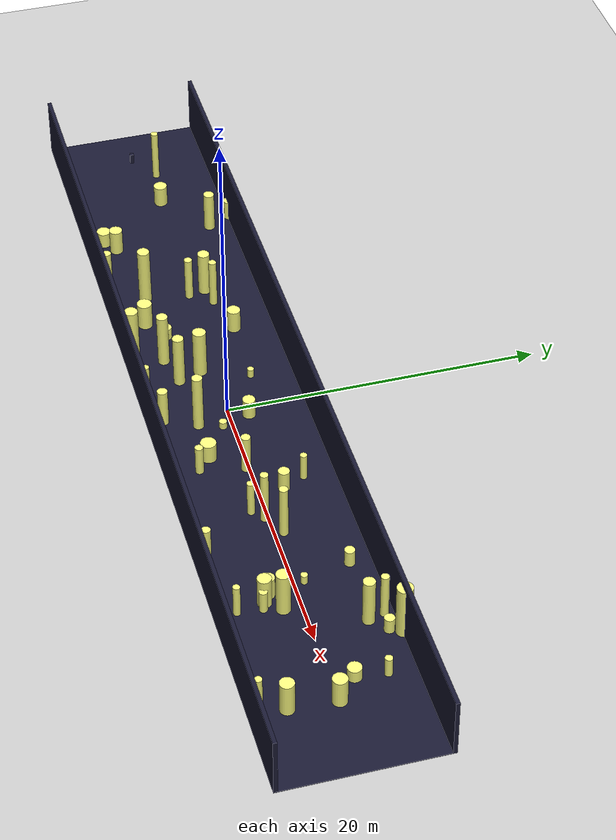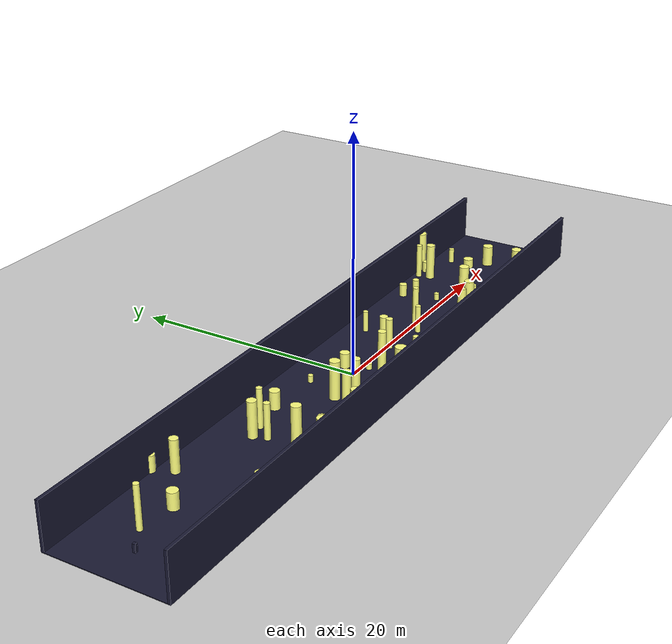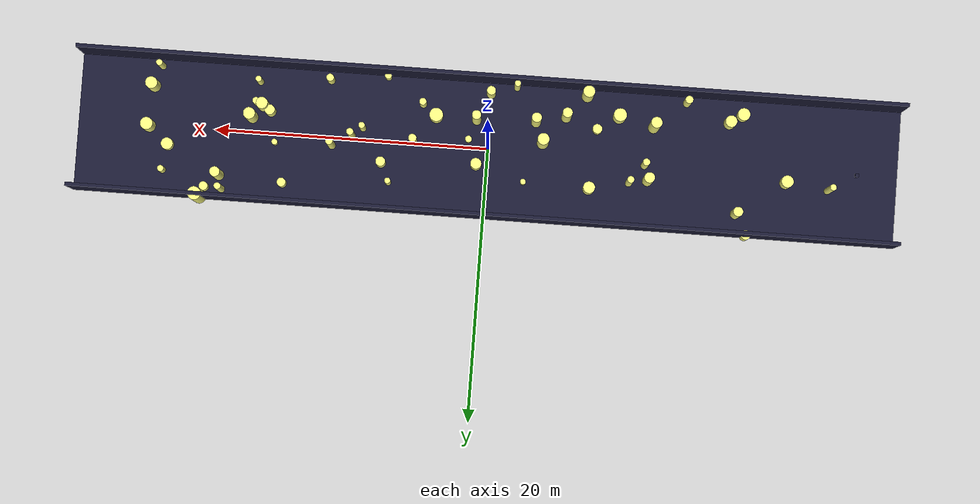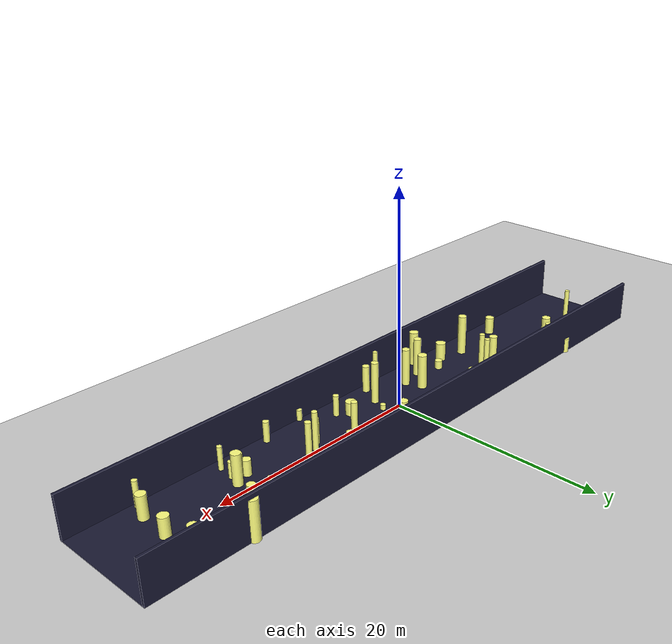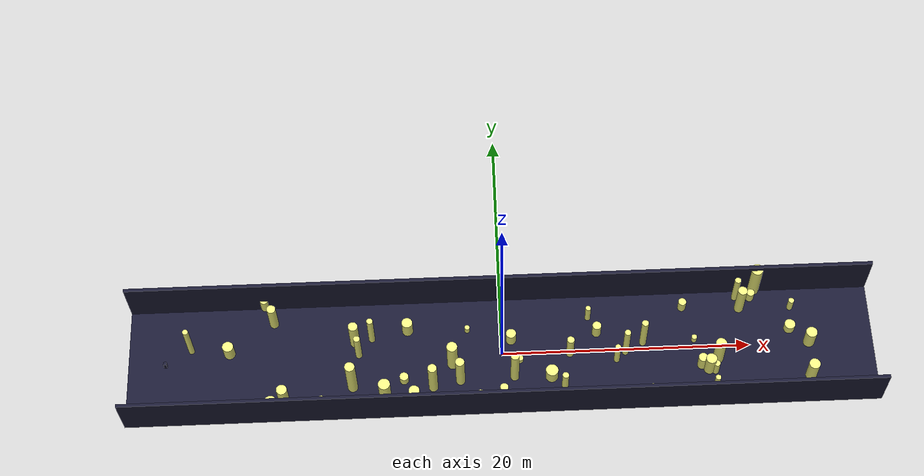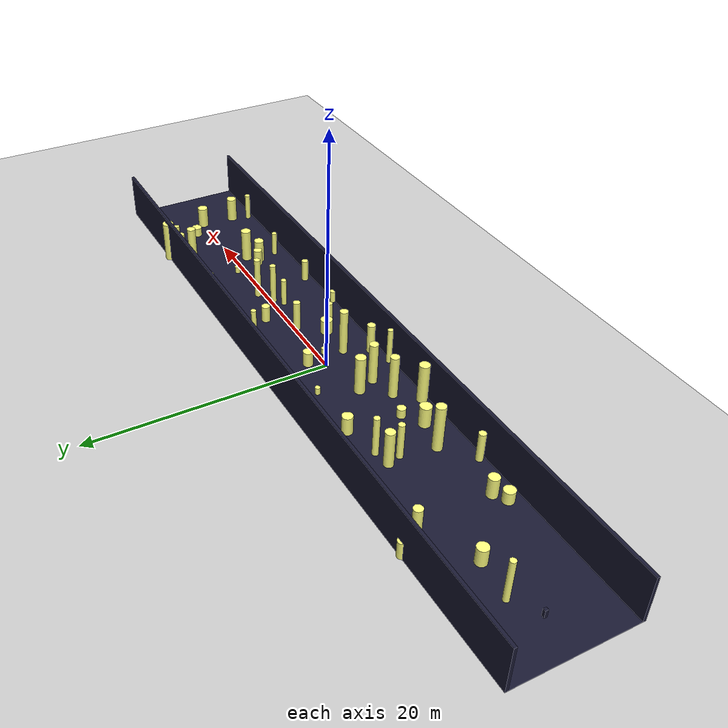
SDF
<?xml version="1.0"?>
<sdf version="1.4">
  <world name="default">
    <gui>
      <camera name="user_camera">
        <pose>-20 -30 40 0 0.66 0.83</pose>
      </camera>
    </gui>
    <include>
      <uri>model://ground_plane</uri>
    </include>
    <include>
      <uri>model://sun</uri>
    </include>
    <scene>
      <shadows>0</shadows>
    </scene>
    <model name="forest">
      <static>true</static>
      <link name="cylinder0">
        <pose>-11.50971648940295 0.3784406899637647 1.5368455626174347 0 0 0 </pose>
        <visual name="visual">
          <geometry>
            <cylinder>
              <radius>0.2601012299020969</radius>
              <length>3.0736911252348693</length>
            </cylinder>
          </geometry>
          <material>
            <ambient>0.6 0.6 0.6 1</ambient>
            <diffuse>1 1 0.5 1</diffuse>
            <specular>0 0 0</specular>
            <emissive>0 0 0 1</emissive>
          </material>
        </visual>
        <collision name="collision">
          <geometry>
            <cylinder>
              <radius>0.2601012299020969</radius>
              <length>3.0736911252348693</length>
            </cylinder>
          </geometry>
          <max_contacts>0</max_contacts>
        </collision>
      </link>
      <link name="cylinder1">
        <pose>20.445465096450185 4.229135043377296 0.5230156194948639 0 0 0 </pose>
        <visual name="visual">
          <geometry>
            <cylinder>
              <radius>0.31988989258885936</radius>
              <length>1.0460312389897277</length>
            </cylinder>
          </geometry>
          <material>
            <ambient>0.6 0.6 0.6 1</ambient>
            <diffuse>1 1 0.5 1</diffuse>
            <specular>0 0 0</specular>
            <emissive>0 0 0 1</emissive>
          </material>
        </visual>
        <collision name="collision">
          <geometry>
            <cylinder>
              <radius>0.31988989258885936</radius>
              <length>1.0460312389897277</length>
            </cylinder>
          </geometry>
          <max_contacts>0</max_contacts>
        </collision>
      </link>
      <link name="cylinder2">
        <pose>-19.12417257735759 4.9927685493324745 0.7102058162692204 0 0 0 </pose>
        <visual name="visual">
          <geometry>
            <cylinder>
              <radius>0.3498815470747685</radius>
              <length>1.4204116325384408</length>
            </cylinder>
          </geometry>
          <material>
            <ambient>0.6 0.6 0.6 1</ambient>
            <diffuse>1 1 0.5 1</diffuse>
            <specular>0 0 0</specular>
            <emissive>0 0 0 1</emissive>
          </material>
        </visual>
        <collision name="collision">
          <geometry>
            <cylinder>
              <radius>0.3498815470747685</radius>
              <length>1.4204116325384408</length>
            </cylinder>
          </geometry>
          <max_contacts>0</max_contacts>
        </collision>
      </link>
      <link name="cylinder3">
        <pose>24.13416651990684 -4.365896746050368 1.2246563809555269 0 0 0 </pose>
        <visual name="visual">
          <geometry>
            <cylinder>
              <radius>0.23080939881732151</radius>
              <length>2.4493127619110537</length>
            </cylinder>
          </geometry>
          <material>
            <ambient>0.6 0.6 0.6 1</ambient>
            <diffuse>1 1 0.5 1</diffuse>
            <specular>0 0 0</specular>
            <emissive>0 0 0 1</emissive>
          </material>
        </visual>
        <collision name="collision">
          <geometry>
            <cylinder>
              <radius>0.23080939881732151</radius>
              <length>2.4493127619110537</length>
            </cylinder>
          </geometry>
          <max_contacts>0</max_contacts>
        </collision>
      </link>
      <link name="cylinder4">
        <pose>-10.45249539578591 1.7419244824406146 1.6975572415122342 0 0 0 </pose>
        <visual name="visual">
          <geometry>
            <cylinder>
              <radius>0.25023423193561384</radius>
              <length>3.3951144830244684</length>
            </cylinder>
          </geometry>
          <material>
            <ambient>0.6 0.6 0.6 1</ambient>
            <diffuse>1 1 0.5 1</diffuse>
            <specular>0 0 0</specular>
            <emissive>0 0 0 1</emissive>
          </material>
        </visual>
        <collision name="collision">
          <geometry>
            <cylinder>
              <radius>0.25023423193561384</radius>
              <length>3.3951144830244684</length>
            </cylinder>
          </geometry>
          <max_contacts>0</max_contacts>
        </collision>
      </link>
      <link name="cylinder5">
        <pose>14.796656784486203 3.5631717576560913 0.5765609520463494 0 0 0 </pose>
        <visual name="visual">
          <geometry>
            <cylinder>
              <radius>0.3223586481893456</radius>
              <length>1.1531219040926988</length>
            </cylinder>
          </geometry>
          <material>
            <ambient>0.6 0.6 0.6 1</ambient>
            <diffuse>1 1 0.5 1</diffuse>
            <specular>0 0 0</specular>
            <emissive>0 0 0 1</emissive>
          </material>
        </visual>
        <collision name="collision">
          <geometry>
            <cylinder>
              <radius>0.3223586481893456</radius>
              <length>1.1531219040926988</length>
            </cylinder>
          </geometry>
          <max_contacts>0</max_contacts>
        </collision>
      </link>
      <link name="cylinder6">
        <pose>-7.027598962559832 -4.389840433668959 1.6943679283181077 0 0 0 </pose>
        <visual name="visual">
          <geometry>
            <cylinder>
              <radius>0.4260250800929599</radius>
              <length>3.3887358566362153</length>
            </cylinder>
          </geometry>
          <material>
            <ambient>0.6 0.6 0.6 1</ambient>
            <diffuse>1 1 0.5 1</diffuse>
            <specular>0 0 0</specular>
            <emissive>0 0 0 1</emissive>
          </material>
        </visual>
        <collision name="collision">
          <geometry>
            <cylinder>
              <radius>0.4260250800929599</radius>
              <length>3.3887358566362153</length>
            </cylinder>
          </geometry>
          <max_contacts>0</max_contacts>
        </collision>
      </link>
      <link name="cylinder7">
        <pose>19.453249235345602 3.306012450025925 1.6114820340505769 0 0 0 </pose>
        <visual name="visual">
          <geometry>
            <cylinder>
              <radius>0.3701882476601405</radius>
              <length>3.2229640681011538</length>
            </cylinder>
          </geometry>
          <material>
            <ambient>0.6 0.6 0.6 1</ambient>
            <diffuse>1 1 0.5 1</diffuse>
            <specular>0 0 0</specular>
            <emissive>0 0 0 1</emissive>
          </material>
        </visual>
        <collision name="collision">
          <geometry>
            <cylinder>
              <radius>0.3701882476601405</radius>
              <length>3.2229640681011538</length>
            </cylinder>
          </geometry>
          <max_contacts>0</max_contacts>
        </collision>
      </link>
      <link name="cylinder8">
        <pose>20.766220480286847 4.979602330847756 1.781969511092043 0 0 0 </pose>
        <visual name="visual">
          <geometry>
            <cylinder>
              <radius>0.4853423752478854</radius>
              <length>3.563939022184086</length>
            </cylinder>
          </geometry>
          <material>
            <ambient>0.6 0.6 0.6 1</ambient>
            <diffuse>1 1 0.5 1</diffuse>
            <specular>0 0 0</specular>
            <emissive>0 0 0 1</emissive>
          </material>
        </visual>
        <collision name="collision">
          <geometry>
            <cylinder>
              <radius>0.4853423752478854</radius>
              <length>3.563939022184086</length>
            </cylinder>
          </geometry>
          <max_contacts>0</max_contacts>
        </collision>
      </link>
      <link name="cylinder9">
        <pose>-21.905142377105136 0.8982500905047779 0.7407148571103568 0 0 0 </pose>
        <visual name="visual">
          <geometry>
            <cylinder>
              <radius>0.44558727020398137</radius>
              <length>1.4814297142207136</length>
            </cylinder>
          </geometry>
          <material>
            <ambient>0.6 0.6 0.6 1</ambient>
            <diffuse>1 1 0.5 1</diffuse>
            <specular>0 0 0</specular>
            <emissive>0 0 0 1</emissive>
          </material>
        </visual>
        <collision name="collision">
          <geometry>
            <cylinder>
              <radius>0.44558727020398137</radius>
              <length>1.4814297142207136</length>
            </cylinder>
          </geometry>
          <max_contacts>0</max_contacts>
        </collision>
      </link>
      <link name="cylinder10">
        <pose>23.60845223542055 3.2123309096910724 0.6759926315638016 0 0 0 </pose>
        <visual name="visual">
          <geometry>
            <cylinder>
              <radius>0.23364750921768068</radius>
              <length>1.3519852631276033</length>
            </cylinder>
          </geometry>
          <material>
            <ambient>0.6 0.6 0.6 1</ambient>
            <diffuse>1 1 0.5 1</diffuse>
            <specular>0 0 0</specular>
            <emissive>0 0 0 1</emissive>
          </material>
        </visual>
        <collision name="collision">
          <geometry>
            <cylinder>
              <radius>0.23364750921768068</radius>
              <length>1.3519852631276033</length>
            </cylinder>
          </geometry>
          <max_contacts>0</max_contacts>
        </collision>
      </link>
      <link name="cylinder11">
        <pose>16.89928428154692 -3.7264520253411106 1.0966298093393507 0 0 0 </pose>
        <visual name="visual">
          <geometry>
            <cylinder>
              <radius>0.21959606382685526</radius>
              <length>2.1932596186787015</length>
            </cylinder>
          </geometry>
          <material>
            <ambient>0.6 0.6 0.6 1</ambient>
            <diffuse>1 1 0.5 1</diffuse>
            <specular>0 0 0</specular>
            <emissive>0 0 0 1</emissive>
          </material>
        </visual>
        <collision name="collision">
          <geometry>
            <cylinder>
              <radius>0.21959606382685526</radius>
              <length>2.1932596186787015</length>
            </cylinder>
          </geometry>
          <max_contacts>0</max_contacts>
        </collision>
      </link>
      <link name="cylinder12">
        <pose>-7.8958292670709405 -2.003485623476171 0.4308336722723529 0 0 0 </pose>
        <visual name="visual">
          <geometry>
            <cylinder>
              <radius>0.35230183148036553</radius>
              <length>0.8616673445447058</length>
            </cylinder>
          </geometry>
          <material>
            <ambient>0.6 0.6 0.6 1</ambient>
            <diffuse>1 1 0.5 1</diffuse>
            <specular>0 0 0</specular>
            <emissive>0 0 0 1</emissive>
          </material>
        </visual>
        <collision name="collision">
          <geometry>
            <cylinder>
              <radius>0.35230183148036553</radius>
              <length>0.8616673445447058</length>
            </cylinder>
          </geometry>
          <max_contacts>0</max_contacts>
        </collision>
      </link>
      <link name="cylinder13">
        <pose>7.591017384437002 -4.766936036940973 0.5309849560073668 0 0 0 </pose>
        <visual name="visual">
          <geometry>
            <cylinder>
              <radius>0.24578454448125603</radius>
              <length>1.0619699120147337</length>
            </cylinder>
          </geometry>
          <material>
            <ambient>0.6 0.6 0.6 1</ambient>
            <diffuse>1 1 0.5 1</diffuse>
            <specular>0 0 0</specular>
            <emissive>0 0 0 1</emissive>
          </material>
        </visual>
        <collision name="collision">
          <geometry>
            <cylinder>
              <radius>0.24578454448125603</radius>
              <length>1.0619699120147337</length>
            </cylinder>
          </geometry>
          <max_contacts>0</max_contacts>
        </collision>
      </link>
      <link name="cylinder14">
        <pose>-1.8607716086681663 -4.634621952053401 1.5568460076103212 0 0 0 </pose>
        <visual name="visual">
          <geometry>
            <cylinder>
              <radius>0.2206635264676672</radius>
              <length>3.1136920152206424</length>
            </cylinder>
          </geometry>
          <material>
            <ambient>0.6 0.6 0.6 1</ambient>
            <diffuse>1 1 0.5 1</diffuse>
            <specular>0 0 0</specular>
            <emissive>0 0 0 1</emissive>
          </material>
        </visual>
        <collision name="collision">
          <geometry>
            <cylinder>
              <radius>0.2206635264676672</radius>
              <length>3.1136920152206424</length>
            </cylinder>
          </geometry>
          <max_contacts>0</max_contacts>
        </collision>
      </link>
      <link name="cylinder15">
        <pose>17.038567420000945 -2.2048668098769078 0.7668847074518159 0 0 0 </pose>
        <visual name="visual">
          <geometry>
            <cylinder>
              <radius>0.2547004432745423</radius>
              <length>1.5337694149036318</length>
            </cylinder>
          </geometry>
          <material>
            <ambient>0.6 0.6 0.6 1</ambient>
            <diffuse>1 1 0.5 1</diffuse>
            <specular>0 0 0</specular>
            <emissive>0 0 0 1</emissive>
          </material>
        </visual>
        <collision name="collision">
          <geometry>
            <cylinder>
              <radius>0.2547004432745423</radius>
              <length>1.5337694149036318</length>
            </cylinder>
          </geometry>
          <max_contacts>0</max_contacts>
        </collision>
      </link>
      <link name="cylinder16">
        <pose>-9.449864087509606 -3.0413480654806024 0.9048208741623904 0 0 0 </pose>
        <visual name="visual">
          <geometry>
            <cylinder>
              <radius>0.47689549926836233</radius>
              <length>1.8096417483247809</length>
            </cylinder>
          </geometry>
          <material>
            <ambient>0.6 0.6 0.6 1</ambient>
            <diffuse>1 1 0.5 1</diffuse>
            <specular>0 0 0</specular>
            <emissive>0 0 0 1</emissive>
          </material>
        </visual>
        <collision name="collision">
          <geometry>
            <cylinder>
              <radius>0.47689549926836233</radius>
              <length>1.8096417483247809</length>
            </cylinder>
          </geometry>
          <max_contacts>0</max_contacts>
        </collision>
      </link>
      <link name="cylinder17">
        <pose>24.633357587308097 -2.889115235577254 1.1199844130438386 0 0 0 </pose>
        <visual name="visual">
          <geometry>
            <cylinder>
              <radius>0.4408104555623202</radius>
              <length>2.239968826087677</length>
            </cylinder>
          </geometry>
          <material>
            <ambient>0.6 0.6 0.6 1</ambient>
            <diffuse>1 1 0.5 1</diffuse>
            <specular>0 0 0</specular>
            <emissive>0 0 0 1</emissive>
          </material>
        </visual>
        <collision name="collision">
          <geometry>
            <cylinder>
              <radius>0.4408104555623202</radius>
              <length>2.239968826087677</length>
            </cylinder>
          </geometry>
          <max_contacts>0</max_contacts>
        </collision>
      </link>
      <link name="cylinder18">
        <pose>17.327936557610244 -1.1077528898005218 1.467278697320094 0 0 0 </pose>
        <visual name="visual">
          <geometry>
            <cylinder>
              <radius>0.4311899031327323</radius>
              <length>2.934557394640188</length>
            </cylinder>
          </geometry>
          <material>
            <ambient>0.6 0.6 0.6 1</ambient>
            <diffuse>1 1 0.5 1</diffuse>
            <specular>0 0 0</specular>
            <emissive>0 0 0 1</emissive>
          </material>
        </visual>
        <collision name="collision">
          <geometry>
            <cylinder>
              <radius>0.4311899031327323</radius>
              <length>2.934557394640188</length>
            </cylinder>
          </geometry>
          <max_contacts>0</max_contacts>
        </collision>
      </link>
      <link name="cylinder19">
        <pose>23.34250269751891 1.3273741179569578 0.4386517699472763 0 0 0 </pose>
        <visual name="visual">
          <geometry>
            <cylinder>
              <radius>0.4354963117465799</radius>
              <length>0.8773035398945526</length>
            </cylinder>
          </geometry>
          <material>
            <ambient>0.6 0.6 0.6 1</ambient>
            <diffuse>1 1 0.5 1</diffuse>
            <specular>0 0 0</specular>
            <emissive>0 0 0 1</emissive>
          </material>
        </visual>
        <collision name="collision">
          <geometry>
            <cylinder>
              <radius>0.4354963117465799</radius>
              <length>0.8773035398945526</length>
            </cylinder>
          </geometry>
          <max_contacts>0</max_contacts>
        </collision>
      </link>
      <link name="cylinder20">
        <pose>-24.975246178106598 1.2767747795228779 1.8139175650425563 0 0 0 </pose>
        <visual name="visual">
          <geometry>
            <cylinder>
              <radius>0.229886626957795</radius>
              <length>3.6278351300851126</length>
            </cylinder>
          </geometry>
          <material>
            <ambient>0.6 0.6 0.6 1</ambient>
            <diffuse>1 1 0.5 1</diffuse>
            <specular>0 0 0</specular>
            <emissive>0 0 0 1</emissive>
          </material>
        </visual>
        <collision name="collision">
          <geometry>
            <cylinder>
              <radius>0.229886626957795</radius>
              <length>3.6278351300851126</length>
            </cylinder>
          </geometry>
          <max_contacts>0</max_contacts>
        </collision>
      </link>
      <link name="cylinder21">
        <pose>-5.578198766764551 -2.713668969157077 1.8652651871959993 0 0 0 </pose>
        <visual name="visual">
          <geometry>
            <cylinder>
              <radius>0.36116415008882097</radius>
              <length>3.7305303743919986</length>
            </cylinder>
          </geometry>
          <material>
            <ambient>0.6 0.6 0.6 1</ambient>
            <diffuse>1 1 0.5 1</diffuse>
            <specular>0 0 0</specular>
            <emissive>0 0 0 1</emissive>
          </material>
        </visual>
        <collision name="collision">
          <geometry>
            <cylinder>
              <radius>0.36116415008882097</radius>
              <length>3.7305303743919986</length>
            </cylinder>
          </geometry>
          <max_contacts>0</max_contacts>
        </collision>
      </link>
      <link name="cylinder22">
        <pose>9.932930223401435 -0.2316035928439817 1.8197812594405283 0 0 0 </pose>
        <visual name="visual">
          <geometry>
            <cylinder>
              <radius>0.25302273761751604</radius>
              <length>3.6395625188810565</length>
            </cylinder>
          </geometry>
          <material>
            <ambient>0.6 0.6 0.6 1</ambient>
            <diffuse>1 1 0.5 1</diffuse>
            <specular>0 0 0</specular>
            <emissive>0 0 0 1</emissive>
          </material>
        </visual>
        <collision name="collision">
          <geometry>
            <cylinder>
              <radius>0.25302273761751604</radius>
              <length>3.6395625188810565</length>
            </cylinder>
          </geometry>
          <max_contacts>0</max_contacts>
        </collision>
      </link>
      <link name="cylinder23">
        <pose>15.548123468520444 0.6170216378495326 0.32647017646891996 0 0 0 </pose>
        <visual name="visual">
          <geometry>
            <cylinder>
              <radius>0.2173016867518941</radius>
              <length>0.6529403529378399</length>
            </cylinder>
          </geometry>
          <material>
            <ambient>0.6 0.6 0.6 1</ambient>
            <diffuse>1 1 0.5 1</diffuse>
            <specular>0 0 0</specular>
            <emissive>0 0 0 1</emissive>
          </material>
        </visual>
        <collision name="collision">
          <geometry>
            <cylinder>
              <radius>0.2173016867518941</radius>
              <length>0.6529403529378399</length>
            </cylinder>
          </geometry>
          <max_contacts>0</max_contacts>
        </collision>
      </link>
      <link name="cylinder24">
        <pose>3.8959917160455326 -2.142312821425935 0.6539617936717899 0 0 0 </pose>
        <visual name="visual">
          <geometry>
            <cylinder>
              <radius>0.49654853002282134</radius>
              <length>1.3079235873435797</length>
            </cylinder>
          </geometry>
          <material>
            <ambient>0.6 0.6 0.6 1</ambient>
            <diffuse>1 1 0.5 1</diffuse>
            <specular>0 0 0</specular>
            <emissive>0 0 0 1</emissive>
          </material>
        </visual>
        <collision name="collision">
          <geometry>
            <cylinder>
              <radius>0.49654853002282134</radius>
              <length>1.3079235873435797</length>
            </cylinder>
          </geometry>
          <max_contacts>0</max_contacts>
        </collision>
      </link>
      <link name="cylinder25">
        <pose>-12.00004045681582 -2.4396760101301274 1.9863789627941784 0 0 0 </pose>
        <visual name="visual">
          <geometry>
            <cylinder>
              <radius>0.4018412993599447</radius>
              <length>3.9727579255883567</length>
            </cylinder>
          </geometry>
          <material>
            <ambient>0.6 0.6 0.6 1</ambient>
            <diffuse>1 1 0.5 1</diffuse>
            <specular>0 0 0</specular>
            <emissive>0 0 0 1</emissive>
          </material>
        </visual>
        <collision name="collision">
          <geometry>
            <cylinder>
              <radius>0.4018412993599447</radius>
              <length>3.9727579255883567</length>
            </cylinder>
          </geometry>
          <max_contacts>0</max_contacts>
        </collision>
      </link>
      <link name="cylinder26">
        <pose>-18.464022592532952 -3.7986320226205117 0.5492300046240148 0 0 0 </pose>
        <visual name="visual">
          <geometry>
            <cylinder>
              <radius>0.455361109844198</radius>
              <length>1.0984600092480297</length>
            </cylinder>
          </geometry>
          <material>
            <ambient>0.6 0.6 0.6 1</ambient>
            <diffuse>1 1 0.5 1</diffuse>
            <specular>0 0 0</specular>
            <emissive>0 0 0 1</emissive>
          </material>
        </visual>
        <collision name="collision">
          <geometry>
            <cylinder>
              <radius>0.455361109844198</radius>
              <length>1.0984600092480297</length>
            </cylinder>
          </geometry>
          <max_contacts>0</max_contacts>
        </collision>
      </link>
      <link name="cylinder27">
        <pose>16.55240090470275 -2.0151647142630082 1.0357735902369873 0 0 0 </pose>
        <visual name="visual">
          <geometry>
            <cylinder>
              <radius>0.4314411471077884</radius>
              <length>2.0715471804739747</length>
            </cylinder>
          </geometry>
          <material>
            <ambient>0.6 0.6 0.6 1</ambient>
            <diffuse>1 1 0.5 1</diffuse>
            <specular>0 0 0</specular>
            <emissive>0 0 0 1</emissive>
          </material>
        </visual>
        <collision name="collision">
          <geometry>
            <cylinder>
              <radius>0.4314411471077884</radius>
              <length>2.0715471804739747</length>
            </cylinder>
          </geometry>
          <max_contacts>0</max_contacts>
        </collision>
      </link>
      <link name="cylinder28">
        <pose>1.4374230128421246 -0.6155444519408659 0.27227300543194144 0 0 0 </pose>
        <visual name="visual">
          <geometry>
            <cylinder>
              <radius>0.24685224302992842</radius>
              <length>0.5445460108638829</length>
            </cylinder>
          </geometry>
          <material>
            <ambient>0.6 0.6 0.6 1</ambient>
            <diffuse>1 1 0.5 1</diffuse>
            <specular>0 0 0</specular>
            <emissive>0 0 0 1</emissive>
          </material>
        </visual>
        <collision name="collision">
          <geometry>
            <cylinder>
              <radius>0.24685224302992842</radius>
              <length>0.5445460108638829</length>
            </cylinder>
          </geometry>
          <max_contacts>0</max_contacts>
        </collision>
      </link>
      <link name="cylinder29">
        <pose>-18.36180838202543 3.4443311074492815 1.3968639984676212 0 0 0 </pose>
        <visual name="visual">
          <geometry>
            <cylinder>
              <radius>0.3552987384387225</radius>
              <length>2.7937279969352424</length>
            </cylinder>
          </geometry>
          <material>
            <ambient>0.6 0.6 0.6 1</ambient>
            <diffuse>1 1 0.5 1</diffuse>
            <specular>0 0 0</specular>
            <emissive>0 0 0 1</emissive>
          </material>
        </visual>
        <collision name="collision">
          <geometry>
            <cylinder>
              <radius>0.3552987384387225</radius>
              <length>2.7937279969352424</length>
            </cylinder>
          </geometry>
          <max_contacts>0</max_contacts>
        </collision>
      </link>
      <link name="cylinder30">
        <pose>11.381241950693806 0.5434811982619445 1.8149380110974394 0 0 0 </pose>
        <visual name="visual">
          <geometry>
            <cylinder>
              <radius>0.2706878428070878</radius>
              <length>3.6298760221948787</length>
            </cylinder>
          </geometry>
          <material>
            <ambient>0.6 0.6 0.6 1</ambient>
            <diffuse>1 1 0.5 1</diffuse>
            <specular>0 0 0</specular>
            <emissive>0 0 0 1</emissive>
          </material>
        </visual>
        <collision name="collision">
          <geometry>
            <cylinder>
              <radius>0.2706878428070878</radius>
              <length>3.6298760221948787</length>
            </cylinder>
          </geometry>
          <max_contacts>0</max_contacts>
        </collision>
      </link>
      <link name="cylinder31">
        <pose>24.806437706451703 0.05666338866824017 0.9452348856955921 0 0 0 </pose>
        <visual name="visual">
          <geometry>
            <cylinder>
              <radius>0.45544725198695607</radius>
              <length>1.8904697713911842</length>
            </cylinder>
          </geometry>
          <material>
            <ambient>0.6 0.6 0.6 1</ambient>
            <diffuse>1 1 0.5 1</diffuse>
            <specular>0 0 0</specular>
            <emissive>0 0 0 1</emissive>
          </material>
        </visual>
        <collision name="collision">
          <geometry>
            <cylinder>
              <radius>0.45544725198695607</radius>
              <length>1.8904697713911842</length>
            </cylinder>
          </geometry>
          <max_contacts>0</max_contacts>
        </collision>
      </link>
      <link name="cylinder32">
        <pose>4.91287160069615 -2.954222394218744 1.0050061592961708 0 0 0 </pose>
        <visual name="visual">
          <geometry>
            <cylinder>
              <radius>0.2595434195159424</radius>
              <length>2.0100123185923415</length>
            </cylinder>
          </geometry>
          <material>
            <ambient>0.6 0.6 0.6 1</ambient>
            <diffuse>1 1 0.5 1</diffuse>
            <specular>0 0 0</specular>
            <emissive>0 0 0 1</emissive>
          </material>
        </visual>
        <collision name="collision">
          <geometry>
            <cylinder>
              <radius>0.2595434195159424</radius>
              <length>2.0100123185923415</length>
            </cylinder>
          </geometry>
          <max_contacts>0</max_contacts>
        </collision>
      </link>
      <link name="cylinder33">
        <pose>-14.320450501189331 -4.419730721063136 1.2522030277229608 0 0 0 </pose>
        <visual name="visual">
          <geometry>
            <cylinder>
              <radius>0.2853472776291403</radius>
              <length>2.5044060554459215</length>
            </cylinder>
          </geometry>
          <material>
            <ambient>0.6 0.6 0.6 1</ambient>
            <diffuse>1 1 0.5 1</diffuse>
            <specular>0 0 0</specular>
            <emissive>0 0 0 1</emissive>
          </material>
        </visual>
        <collision name="collision">
          <geometry>
            <cylinder>
              <radius>0.2853472776291403</radius>
              <length>2.5044060554459215</length>
            </cylinder>
          </geometry>
          <max_contacts>0</max_contacts>
        </collision>
      </link>
      <link name="cylinder34">
        <pose>11.7525062845815 -4.221281451766061 0.9768979849905877 0 0 0 </pose>
        <visual name="visual">
          <geometry>
            <cylinder>
              <radius>0.27726329551436896</radius>
              <length>1.9537959699811753</length>
            </cylinder>
          </geometry>
          <material>
            <ambient>0.6 0.6 0.6 1</ambient>
            <diffuse>1 1 0.5 1</diffuse>
            <specular>0 0 0</specular>
            <emissive>0 0 0 1</emissive>
          </material>
        </visual>
        <collision name="collision">
          <geometry>
            <cylinder>
              <radius>0.27726329551436896</radius>
              <length>1.9537959699811753</length>
            </cylinder>
          </geometry>
          <max_contacts>0</max_contacts>
        </collision>
      </link>
      <link name="cylinder35">
        <pose>0.00910526393417399 -4.042423079003323 1.296018776819873 0 0 0 </pose>
        <visual name="visual">
          <geometry>
            <cylinder>
              <radius>0.3259326919180986</radius>
              <length>2.592037553639746</length>
            </cylinder>
          </geometry>
          <material>
            <ambient>0.6 0.6 0.6 1</ambient>
            <diffuse>1 1 0.5 1</diffuse>
            <specular>0 0 0</specular>
            <emissive>0 0 0 1</emissive>
          </material>
        </visual>
        <collision name="collision">
          <geometry>
            <cylinder>
              <radius>0.3259326919180986</radius>
              <length>2.592037553639746</length>
            </cylinder>
          </geometry>
          <max_contacts>0</max_contacts>
        </collision>
      </link>
      <link name="cylinder36">
        <pose>0.9331698771402941 -2.052834737137492 1.9881931179672305 0 0 0 </pose>
        <visual name="visual">
          <geometry>
            <cylinder>
              <radius>0.33229904745139394</radius>
              <length>3.976386235934461</length>
            </cylinder>
          </geometry>
          <material>
            <ambient>0.6 0.6 0.6 1</ambient>
            <diffuse>1 1 0.5 1</diffuse>
            <specular>0 0 0</specular>
            <emissive>0 0 0 1</emissive>
          </material>
        </visual>
        <collision name="collision">
          <geometry>
            <cylinder>
              <radius>0.33229904745139394</radius>
              <length>3.976386235934461</length>
            </cylinder>
          </geometry>
          <max_contacts>0</max_contacts>
        </collision>
      </link>
      <link name="cylinder37">
        <pose>5.457541442673509 -0.19389853140800284 1.328034688823601 0 0 0 </pose>
        <visual name="visual">
          <geometry>
            <cylinder>
              <radius>0.2967264675225364</radius>
              <length>2.656069377647202</length>
            </cylinder>
          </geometry>
          <material>
            <ambient>0.6 0.6 0.6 1</ambient>
            <diffuse>1 1 0.5 1</diffuse>
            <specular>0 0 0</specular>
            <emissive>0 0 0 1</emissive>
          </material>
        </visual>
        <collision name="collision">
          <geometry>
            <cylinder>
              <radius>0.2967264675225364</radius>
              <length>2.656069377647202</length>
            </cylinder>
          </geometry>
          <max_contacts>0</max_contacts>
        </collision>
      </link>
      <link name="cylinder38">
        <pose>-3.401302283808217 -2.2170215430526676 1.8086630375589101 0 0 0 </pose>
        <visual name="visual">
          <geometry>
            <cylinder>
              <radius>0.35913052051380356</radius>
              <length>3.6173260751178202</length>
            </cylinder>
          </geometry>
          <material>
            <ambient>0.6 0.6 0.6 1</ambient>
            <diffuse>1 1 0.5 1</diffuse>
            <specular>0 0 0</specular>
            <emissive>0 0 0 1</emissive>
          </material>
        </visual>
        <collision name="collision">
          <geometry>
            <cylinder>
              <radius>0.35913052051380356</radius>
              <length>3.6173260751178202</length>
            </cylinder>
          </geometry>
          <max_contacts>0</max_contacts>
        </collision>
      </link>
      <link name="cylinder39">
        <pose>-3.990527358570837 -0.7316431209382976 1.6577401291363432 0 0 0 </pose>
        <visual name="visual">
          <geometry>
            <cylinder>
              <radius>0.42786033076756486</radius>
              <length>3.3154802582726863</length>
            </cylinder>
          </geometry>
          <material>
            <ambient>0.6 0.6 0.6 1</ambient>
            <diffuse>1 1 0.5 1</diffuse>
            <specular>0 0 0</specular>
            <emissive>0 0 0 1</emissive>
          </material>
        </visual>
        <collision name="collision">
          <geometry>
            <cylinder>
              <radius>0.42786033076756486</radius>
              <length>3.3154802582726863</length>
            </cylinder>
          </geometry>
          <max_contacts>0</max_contacts>
        </collision>
      </link>
      <link name="cylinder40">
        <pose>19.20037591306918 4.316838395090134 1.5476294603164504 0 0 0 </pose>
        <visual name="visual">
          <geometry>
            <cylinder>
              <radius>0.24749581535924856</radius>
              <length>3.095258920632901</length>
            </cylinder>
          </geometry>
          <material>
            <ambient>0.6 0.6 0.6 1</ambient>
            <diffuse>1 1 0.5 1</diffuse>
            <specular>0 0 0</specular>
            <emissive>0 0 0 1</emissive>
          </material>
        </visual>
        <collision name="collision">
          <geometry>
            <cylinder>
              <radius>0.24749581535924856</radius>
              <length>3.095258920632901</length>
            </cylinder>
          </geometry>
          <max_contacts>0</max_contacts>
        </collision>
      </link>
      <link name="cylinder41">
        <pose>9.187582139730146 -0.8724318132141038 1.2157802369621646 0 0 0 </pose>
        <visual name="visual">
          <geometry>
            <cylinder>
              <radius>0.23079853607578388</radius>
              <length>2.4315604739243293</length>
            </cylinder>
          </geometry>
          <material>
            <ambient>0.6 0.6 0.6 1</ambient>
            <diffuse>1 1 0.5 1</diffuse>
            <specular>0 0 0</specular>
            <emissive>0 0 0 1</emissive>
          </material>
        </visual>
        <collision name="collision">
          <geometry>
            <cylinder>
              <radius>0.23079853607578388</radius>
              <length>2.4315604739243293</length>
            </cylinder>
          </geometry>
          <max_contacts>0</max_contacts>
        </collision>
      </link>
      <link name="cylinder42">
        <pose>0.7661955550141819 1.20937016410854 0.6656028512257304 0 0 0 </pose>
        <visual name="visual">
          <geometry>
            <cylinder>
              <radius>0.4046409723399007</radius>
              <length>1.3312057024514607</length>
            </cylinder>
          </geometry>
          <material>
            <ambient>0.6 0.6 0.6 1</ambient>
            <diffuse>1 1 0.5 1</diffuse>
            <specular>0 0 0</specular>
            <emissive>0 0 0 1</emissive>
          </material>
        </visual>
        <collision name="collision">
          <geometry>
            <cylinder>
              <radius>0.4046409723399007</radius>
              <length>1.3312057024514607</length>
            </cylinder>
          </geometry>
          <max_contacts>0</max_contacts>
        </collision>
      </link>
      <link name="cylinder43">
        <pose>-11.80731577268449 1.4774033422982091 1.5525507330368087 0 0 0 </pose>
        <visual name="visual">
          <geometry>
            <cylinder>
              <radius>0.3868725118697378</radius>
              <length>3.1051014660736174</length>
            </cylinder>
          </geometry>
          <material>
            <ambient>0.6 0.6 0.6 1</ambient>
            <diffuse>1 1 0.5 1</diffuse>
            <specular>0 0 0</specular>
            <emissive>0 0 0 1</emissive>
          </material>
        </visual>
        <collision name="collision">
          <geometry>
            <cylinder>
              <radius>0.3868725118697378</radius>
              <length>3.1051014660736174</length>
            </cylinder>
          </geometry>
          <max_contacts>0</max_contacts>
        </collision>
      </link>
      <link name="cylinder44">
        <pose>15.996999441306606 -1.6188736193193085 0.7477368818327774 0 0 0 </pose>
        <visual name="visual">
          <geometry>
            <cylinder>
              <radius>0.3769583129802533</radius>
              <length>1.4954737636655548</length>
            </cylinder>
          </geometry>
          <material>
            <ambient>0.6 0.6 0.6 1</ambient>
            <diffuse>1 1 0.5 1</diffuse>
            <specular>0 0 0</specular>
            <emissive>0 0 0 1</emissive>
          </material>
        </visual>
        <collision name="collision">
          <geometry>
            <cylinder>
              <radius>0.3769583129802533</radius>
              <length>1.4954737636655548</length>
            </cylinder>
          </geometry>
          <max_contacts>0</max_contacts>
        </collision>
      </link>
      <link name="cylinder45">
        <pose>7.699459248974662 1.5577430501294476 0.7370903677735863 0 0 0 </pose>
        <visual name="visual">
          <geometry>
            <cylinder>
              <radius>0.35544000374794127</radius>
              <length>1.4741807355471725</length>
            </cylinder>
          </geometry>
          <material>
            <ambient>0.6 0.6 0.6 1</ambient>
            <diffuse>1 1 0.5 1</diffuse>
            <specular>0 0 0</specular>
            <emissive>0 0 0 1</emissive>
          </material>
        </visual>
        <collision name="collision">
          <geometry>
            <cylinder>
              <radius>0.35544000374794127</radius>
              <length>1.4741807355471725</length>
            </cylinder>
          </geometry>
          <max_contacts>0</max_contacts>
        </collision>
      </link>
      <link name="cylinder46">
        <pose>-17.52221889613889 -3.1560106491732176 0.8769548968332871 0 0 0 </pose>
        <visual name="visual">
          <geometry>
            <cylinder>
              <radius>0.42891405536474947</radius>
              <length>1.7539097936665742</length>
            </cylinder>
          </geometry>
          <material>
            <ambient>0.6 0.6 0.6 1</ambient>
            <diffuse>1 1 0.5 1</diffuse>
            <specular>0 0 0</specular>
            <emissive>0 0 0 1</emissive>
          </material>
        </visual>
        <collision name="collision">
          <geometry>
            <cylinder>
              <radius>0.42891405536474947</radius>
              <length>1.7539097936665742</length>
            </cylinder>
          </geometry>
          <max_contacts>0</max_contacts>
        </collision>
      </link>
      <link name="cylinder47">
        <pose>-2.748013920131985 2.226064683125683 0.3248218116667779 0 0 0 </pose>
        <visual name="visual">
          <geometry>
            <cylinder>
              <radius>0.20809559620101004</radius>
              <length>0.6496436233335559</length>
            </cylinder>
          </geometry>
          <material>
            <ambient>0.6 0.6 0.6 1</ambient>
            <diffuse>1 1 0.5 1</diffuse>
            <specular>0 0 0</specular>
            <emissive>0 0 0 1</emissive>
          </material>
        </visual>
        <collision name="collision">
          <geometry>
            <cylinder>
              <radius>0.20809559620101004</radius>
              <length>0.6496436233335559</length>
            </cylinder>
          </geometry>
          <max_contacts>0</max_contacts>
        </collision>
      </link>
      <link name="cylinder48">
        <pose>7.074105045129045 2.946471528358402 0.9275699121468709 0 0 0 </pose>
        <visual name="visual">
          <geometry>
            <cylinder>
              <radius>0.21832113224046812</radius>
              <length>1.8551398242937418</length>
            </cylinder>
          </geometry>
          <material>
            <ambient>0.6 0.6 0.6 1</ambient>
            <diffuse>1 1 0.5 1</diffuse>
            <specular>0 0 0</specular>
            <emissive>0 0 0 1</emissive>
          </material>
        </visual>
        <collision name="collision">
          <geometry>
            <cylinder>
              <radius>0.21832113224046812</radius>
              <length>1.8551398242937418</length>
            </cylinder>
          </geometry>
          <max_contacts>0</max_contacts>
        </collision>
      </link>
      <link name="cylinder49">
        <pose>-7.559022537995414 2.37436997828188 0.7982236088767314 0 0 0 </pose>
        <visual name="visual">
          <geometry>
            <cylinder>
              <radius>0.43280059257010906</radius>
              <length>1.5964472177534628</length>
            </cylinder>
          </geometry>
          <material>
            <ambient>0.6 0.6 0.6 1</ambient>
            <diffuse>1 1 0.5 1</diffuse>
            <specular>0 0 0</specular>
            <emissive>0 0 0 1</emissive>
          </material>
        </visual>
        <collision name="collision">
          <geometry>
            <cylinder>
              <radius>0.43280059257010906</radius>
              <length>1.5964472177534628</length>
            </cylinder>
          </geometry>
          <max_contacts>0</max_contacts>
        </collision>
      </link>
      <link name="cube0">
        <pose>0 5.0 2.0 0 0 0 </pose>
        <visual name="visual">
          <geometry>
            <box>
              <size>60.0 0.25 4.0</size>
            </box>
          </geometry>
          <material>
            <ambient>0.1 0.1 0.1 1</ambient>
            <diffuse>0.1 0.1 0.2 1</diffuse>
            <specular>0 0 0</specular>
            <emissive>0 0 0 1</emissive>
          </material>
        </visual>
        <collision name="collision">
          <geometry>
            <box>
              <size>60.0 0.25 4.0</size>
            </box>
          </geometry>
          <max_contacts>0</max_contacts>
        </collision>
      </link>
      <link name="cube1">
        <pose>0 -5.0 2.0 0 0 0 </pose>
        <visual name="visual">
          <geometry>
            <box>
              <size>60.0 0.25 4.0</size>
            </box>
          </geometry>
          <material>
            <ambient>0.1 0.1 0.1 1</ambient>
            <diffuse>0.1 0.1 0.2 1</diffuse>
            <specular>0 0 0</specular>
            <emissive>0 0 0 1</emissive>
          </material>
        </visual>
        <collision name="collision">
          <geometry>
            <box>
              <size>60.0 0.25 4.0</size>
            </box>
          </geometry>
          <max_contacts>0</max_contacts>
        </collision>
      </link>
      <link name="cube2">
        <pose>0 0 0.03125 0 0 0 </pose>
        <visual name="visual">
          <geometry>
            <box>
              <size>60.0 10 0.0625</size>
            </box>
          </geometry>
          <material>
            <ambient>0.1 0.1 0.1 1</ambient>
            <diffuse>0.1 0.1 0.2 1</diffuse>
            <specular>0 0 0</specular>
            <emissive>0 0 0 1</emissive>
          </material>
        </visual>
        <collision name="collision">
          <geometry>
            <box>
              <size>60.0 10 0.0625</size>
            </box>
          </geometry>
          <max_contacts>0</max_contacts>
        </collision>
      </link>
      <link name="cube3">
        <pose>-27.0 0.0 0.25 0 0 0 </pose>
        <visual name="visual">
          <geometry>
            <box>
              <size>0.25 0.25 1.0</size>
            </box>
          </geometry>
          <material>
            <ambient>0.1 0.1 0.1 1</ambient>
            <diffuse>0.1 0.1 0.2 1</diffuse>
            <specular>0 0 0</specular>
            <emissive>0 0 0 1</emissive>
          </material>
        </visual>
        <collision name="collision">
          <geometry>
            <box>
              <size>0.25 0.25 1.0</size>
            </box>
          </geometry>
          <max_contacts>0</max_contacts>
        </collision>
      </link>
    </model>
    <!-- Physics -->
    <physics name="default_physics" default="0" type="ode">
      <max_step_size>0.004</max_step_size>
      <real_time_factor>1</real_time_factor>
      <real_time_update_rate>250</real_time_update_rate>
      <gravity>0 0 -9.8</gravity>
      <magnetic_field>6e-06 2.3e-05 -4.2e-05</magnetic_field>
      <ode>
        <solver>
          <type>quick</type>
          <iters>1000</iters>
          <sor>1.3</sor>
          <use_dynamic_moi_rescaling>0</use_dynamic_moi_rescaling>
        </solver>
        <constraints>
          <cfm>0</cfm>
          <erp>0.2</erp>
          <contact_max_correcting_vel>100</contact_max_correcting_vel>
          <contact_surface_layer>0.001</contact_surface_layer>
        </constraints>
      </ode>
    </physics>
  </world>
</sdf>
